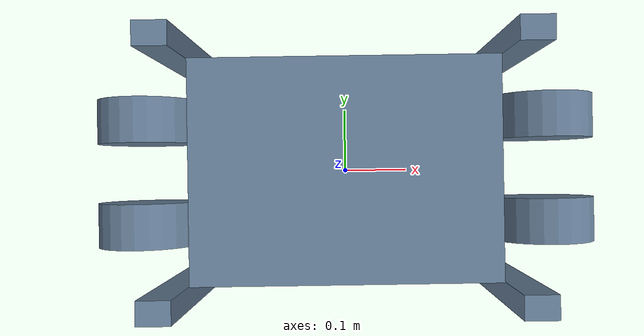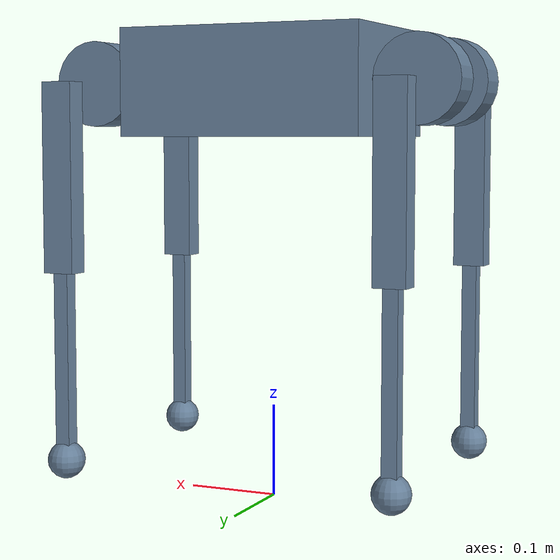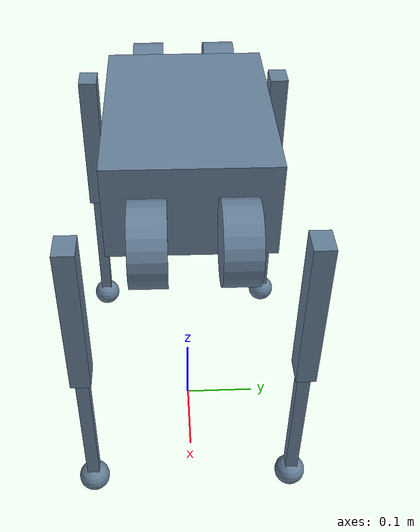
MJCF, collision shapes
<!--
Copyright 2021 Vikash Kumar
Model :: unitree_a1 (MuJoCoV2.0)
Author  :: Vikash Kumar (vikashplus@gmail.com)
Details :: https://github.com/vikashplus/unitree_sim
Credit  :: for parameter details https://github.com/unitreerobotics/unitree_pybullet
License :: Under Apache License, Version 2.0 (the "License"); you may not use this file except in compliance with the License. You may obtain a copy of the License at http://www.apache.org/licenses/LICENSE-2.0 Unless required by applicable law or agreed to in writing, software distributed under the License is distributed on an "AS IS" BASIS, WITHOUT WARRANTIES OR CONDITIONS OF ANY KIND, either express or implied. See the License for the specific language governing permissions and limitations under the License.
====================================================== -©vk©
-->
<mujoco model="unitree_a1">
    <compiler angle="radian"/>
    <size njmax="500" nconmax="100"/>
    <asset>
        <mesh name="trunk" file="../unitree_sim/meshes/a1/trunk.stl"/>
        <mesh name="hip" file="../unitree_sim/meshes/a1/hip.stl"/>
        <mesh name="thigh_mirror" file="../unitree_sim/meshes/a1/thigh_mirror.stl"/>
        <mesh name="calf" file="../unitree_sim/meshes/a1/calf.stl"/>
        <mesh name="thigh" file="../unitree_sim/meshes/a1/thigh.stl"/>
        <material name="metal_grey" specular=".8" shininess=".8"/>
    </asset>

    <default>
        <default class="unitree">
            <joint limited="true" damping="10" armature="0.001" frictionloss=".2" range="-1.57 1.57"/>
            <geom contype="1" conaffinity="0" condim="4" margin="0.001" solref=".02 1" solimp=".8 .9 .01" group="4" rgba=".4 .5 .6 1"/>
            <position ctrllimited="true"/>
            <default class="viz_metal_grey">
                <geom contype="0" conaffinity="0" type="mesh" material="metal_grey" rgba=".2 .2 .25 1" mass="0" group="1"/>
            </default>
        </default>
    </default>

    <worldbody>
        <body name="a1_torso" pos="0 0 0.45" childclass="unitree">
            <geom size="0.0005 0.0005 0.0005" type="box" contype="0" conaffinity="0" group="1"/>
            <geom class="viz_metal_grey" mesh="trunk"/>
            <geom size="0.1335 0.097 0.057" type="box"/>
            <geom size="0.0005 0.0005 0.0005" type="box" contype="0" conaffinity="0" group="1" rgba="0.8 0 0 1"/>
            <geom size="0.0005 0.0005 0.0005" type="box" rgba="0.8 0 0 1"/>
            <site name="a1_torso" />
            <body name="FR_hip" pos="0.183 -0.047 0">
                <inertial pos="-0.003311 -0.000635 3.1e-05" quat="0.507528 0.506268 0.491507 0.494499" mass="0.696" diaginertia="0.000807752 0.00055293 0.000468983"/>
                <joint name="FR_hip" pos="0 0 0" axis="1 0 0" limited="true" range="-0.802851 0.802851"/>
                <geom quat="0 1 0 0" class="viz_metal_grey" mesh="hip"/>
                <geom size="0.046 0.02" quat="0.707107 0.707107 0 0" type="cylinder"/>
                <body name="FR_thigh" pos="0 -0.08505 0">
                    <inertial pos="-0.003237 0.022327 -0.027326" quat="0.999125 -0.00256393 -0.0409531 -0.00806091" mass="1.013" diaginertia="0.00555739 0.00513936 0.00133944"/>
                    <joint name="FR_thigh" pos="0 0 0" axis="0 1 0" limited="true" range="-1.0472 4.18879"/>
                    <geom class="viz_metal_grey" mesh="thigh_mirror"/>
                    <geom size="0.1 0.01225 0.017" pos="0 0 -0.1" quat="0.707107 0 0.707107 0" type="box"/>
                    <body name="FR_calf" pos="0 0 -0.2">
                        <inertial pos="0.00472659 0 -0.131975" quat="0.706886 0.017653 0.017653 0.706886" mass="0.226" diaginertia="0.00340344 0.00339393 3.54834e-05"/>
                        <joint name="FR_calf" pos="0 0 0" axis="0 1 0" limited="true" range="-2.69653 -0.916298"/>
                        <geom class="viz_metal_grey" mesh="calf"/>
                        <geom size="0.1 0.008 0.008" pos="0 0 -0.1" quat="0.707107 0 0.707107 0" type="box"/>
                        <geom size="0.01" pos="0 0 -0.2" contype="0" conaffinity="0" group="1"/>
                        <geom size="0.02" pos="0 0 -0.2"/>
                    </body>
                </body>
            </body>
            <body name="FL_hip" pos="0.183 0.047 0">
                <inertial pos="-0.003311 0.000635 3.1e-05" quat="0.494499 0.491507 0.506268 0.507528" mass="0.696" diaginertia="0.000807752 0.00055293 0.000468983"/>
                <joint name="FL_hip" pos="0 0 0" axis="1 0 0" limited="true" range="-0.802851 0.802851"/>
                <geom class="viz_metal_grey" mesh="hip"/>
                <geom size="0.046 0.02" quat="0.707107 0.707107 0 0" type="cylinder"/>
                <body name="FL_thigh" pos="0 0.08505 0">
                    <inertial pos="-0.003237 -0.022327 -0.027326" quat="0.999125 0.00256393 -0.0409531 0.00806091" mass="1.013" diaginertia="0.00555739 0.00513936 0.00133944"/>
                    <joint name="FL_thigh" pos="0 0 0" axis="0 1 0" limited="true" range="-1.0472 4.18879"/>
                    <geom class="viz_metal_grey" mesh="thigh"/>
                    <geom size="0.1 0.01225 0.017" pos="0 0 -0.1" quat="0.707107 0 0.707107 0" type="box"/>
                    <body name="FL_calf" pos="0 0 -0.2">
                        <inertial pos="0.00472659 0 -0.131975" quat="0.706886 0.017653 0.017653 0.706886" mass="0.226" diaginertia="0.00340344 0.00339393 3.54834e-05"/>
                        <joint name="FL_calf" pos="0 0 0" axis="0 1 0" limited="true" range="-2.69653 -0.916298"/>
                        <geom class="viz_metal_grey" mesh="calf"/>
                        <geom size="0.1 0.008 0.008" pos="0 0 -0.1" quat="0.707107 0 0.707107 0" type="box"/>
                        <geom size="0.01" pos="0 0 -0.2" contype="0" conaffinity="0" group="1"/>
                        <geom size="0.02" pos="0 0 -0.2"/>
                    </body>
                </body>
            </body>
            <body name="RR_hip" pos="-0.183 -0.047 0">
                <inertial pos="0.003311 -0.000635 3.1e-05" quat="0.491507 0.494499 0.507528 0.506268" mass="0.696" diaginertia="0.000807752 0.00055293 0.000468983"/>
                <joint name="RR_hip" pos="0 0 0" axis="1 0 0" limited="true" range="-0.802851 0.802851"/>
                <geom quat="0 0 0 -1" class="viz_metal_grey" mesh="hip"/>
                <geom size="0.046 0.02" quat="0.707107 0.707107 0 0" type="cylinder"/>
                <body name="RR_thigh" pos="0 -0.08505 0">
                    <inertial pos="-0.003237 0.022327 -0.027326" quat="0.999125 -0.00256393 -0.0409531 -0.00806091" mass="1.013" diaginertia="0.00555739 0.00513936 0.00133944"/>
                    <joint name="RR_thigh" pos="0 0 0" axis="0 1 0" limited="true" range="-1.0472 4.18879"/>
                    <geom class="viz_metal_grey" mesh="thigh_mirror"/>
                    <geom size="0.1 0.01225 0.017" pos="0 0 -0.1" quat="0.707107 0 0.707107 0" type="box"/>
                    <body name="RR_calf" pos="0 0 -0.2">
                        <inertial pos="0.00472659 0 -0.131975" quat="0.706886 0.017653 0.017653 0.706886" mass="0.226" diaginertia="0.00340344 0.00339393 3.54834e-05"/>
                        <joint name="RR_calf" pos="0 0 0" axis="0 1 0" limited="true" range="-2.69653 -0.916298"/>
                        <geom class="viz_metal_grey" mesh="calf"/>
                        <geom size="0.1 0.008 0.008" pos="0 0 -0.1" quat="0.707107 0 0.707107 0" type="box"/>
                        <geom size="0.01" pos="0 0 -0.2" contype="0" conaffinity="0" group="1"/>
                        <geom size="0.02" pos="0 0 -0.2"/>
                    </body>
                </body>
            </body>
            <body name="RL_hip" pos="-0.183 0.047 0">
                <inertial pos="0.003311 0.000635 3.1e-05" quat="0.506268 0.507528 0.494499 0.491507" mass="0.696" diaginertia="0.000807752 0.00055293 0.000468983"/>
                <joint name="RL_hip" pos="0 0 0" axis="1 0 0" limited="true" range="-0.802851 0.802851"/>
                <geom quat="0 0 1 0" class="viz_metal_grey" mesh="hip"/>
                <geom size="0.046 0.02" quat="0.707107 0.707107 0 0" type="cylinder"/>
                <body name="RL_thigh" pos="0 0.08505 0">
                    <inertial pos="-0.003237 -0.022327 -0.027326" quat="0.999125 0.00256393 -0.0409531 0.00806091" mass="1.013" diaginertia="0.00555739 0.00513936 0.00133944"/>
                    <joint name="RL_thigh" pos="0 0 0" axis="0 1 0" limited="true" range="-1.0472 4.18879"/>
                    <geom class="viz_metal_grey" mesh="thigh"/>
                    <geom size="0.1 0.01225 0.017" pos="0 0 -0.1" quat="0.707107 0 0.707107 0" type="box"/>
                    <body name="RL_calf" pos="0 0 -0.2">
                        <inertial pos="0.00472659 0 -0.131975" quat="0.706886 0.017653 0.017653 0.706886" mass="0.226" diaginertia="0.00340344 0.00339393 3.54834e-05"/>
                        <joint name="RL_calf" pos="0 0 0" axis="0 1 0" limited="true" range="-2.69653 -0.916298"/>
                        <geom class="viz_metal_grey" mesh="calf"/>
                        <geom size="0.1 0.008 0.008" pos="0 0 -0.1" quat="0.707107 0 0.707107 0" type="box"/>
                        <geom size="0.01" pos="0 0 -0.2" contype="0" conaffinity="0" group="1"/>
                        <geom size="0.02" pos="0 0 -0.2"/>
                    </body>
                </body>
            </body>
        </body>
    </worldbody>

    <actuator>
        <position name="FR_hip" kp="60" joint="FR_hip" class="unitree" ctrlrange="-0.802851 0.802851"/>
        <position name="FR_thigh" kp="60" joint="FR_thigh" class="unitree" ctrlrange="-1.0472 4.18879"/>
        <position name="FR_calf" kp="60" joint="FR_calf" class="unitree" ctrlrange="-2.69653 -0.916298"/>
        <position name="FL_hip" kp="60" joint="FL_hip" class="unitree" ctrlrange="-0.802851 0.802851"/>
        <position name="FL_thigh" kp="60" joint="FL_thigh" class="unitree" ctrlrange="-1.0472 4.18879"/>
        <position name="FL_calf" kp="60" joint="FL_calf" class="unitree" ctrlrange="-2.69653 -0.916298"/>
        <position name="RR_hip" kp="60" joint="RR_hip" class="unitree" ctrlrange="-0.802851 0.802851"/>
        <position name="RR_thigh" kp="60" joint="RR_thigh" class="unitree" ctrlrange="-1.0472 4.18879"/>
        <position name="RR_calf" kp="60" joint="RR_calf" class="unitree" ctrlrange="-2.69653 -0.916298"/>
        <position name="RL_hip" kp="60" joint="RL_hip" class="unitree" ctrlrange="-0.802851 0.802851"/>
        <position name="RL_thigh" kp="60" joint="RL_thigh" class="unitree" ctrlrange="-1.0472 4.18879"/>
        <position name="RL_calf" kp="60" joint="RL_calf" class="unitree" ctrlrange="-2.69653 -0.916298"/>
    </actuator>

    <sensor>
        <gyro name="sensor_gyro" site="a1_torso"/>
        <accelerometer name="accelerometer" site="a1_torso"/>
        <framequat name="framequat" objtype='site' objname="a1_torso"/>
        <velocimeter name="velocimeter" site="a1_torso"/>
    </sensor>

</mujoco>
